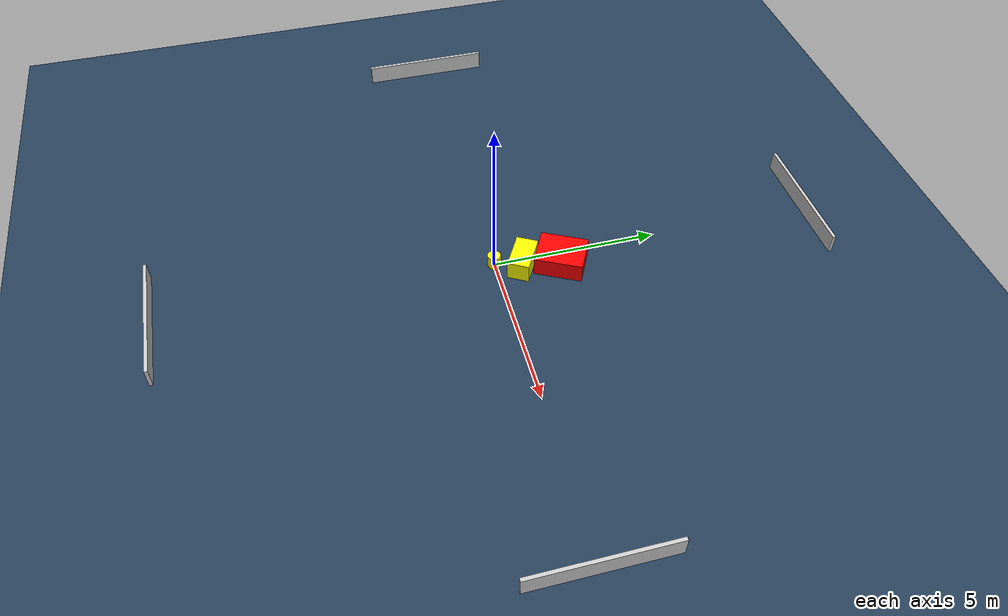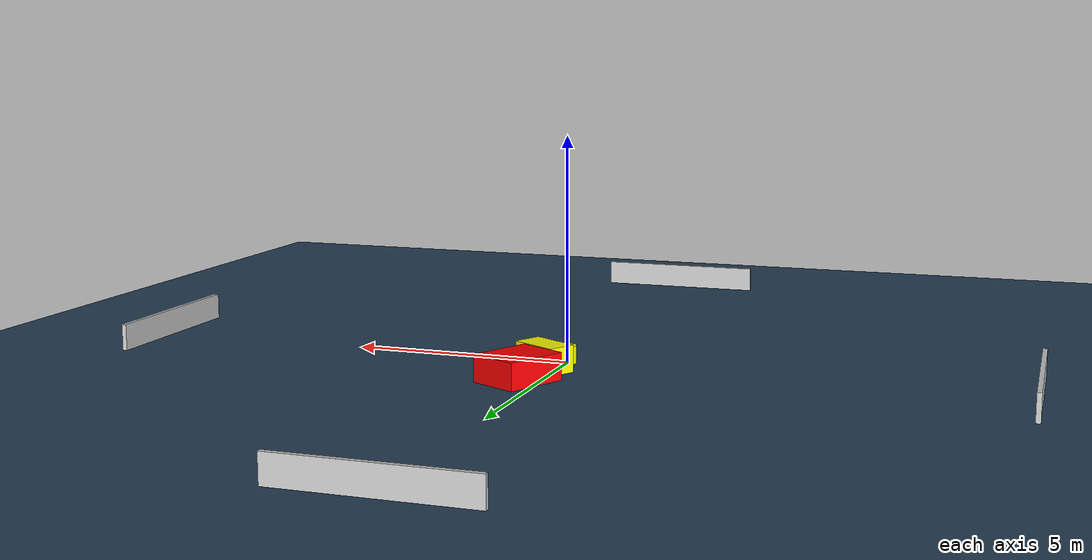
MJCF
<?xml version="1.0" ?>
<mujoco model="generated_environment">
  <option timestep="0.01" integrator="RK4" cone="elliptic"/>
  <default>
    <geom density="1"/>
  </default>
  <asset>
    <texture builtin="gradient" height="3072" name="skybox" rgb1="0.3 0.5 0.7" rgb2="0 0 0" type="skybox" width="512"/>
    <texture builtin="checker" height="300" name="groundplane" rgb1="0.2 0.3 0.4" rgb2="0.1 0.2 0.3" type="2d" width="300"/>
    <material name="groundplane" reflectance="0.2" texrepeat="5 5" texture="groundplane"/>
  </asset>
  <worldbody>
    <light dir="0 0 -1" directional="true" pos="0 0 1.5"/>
    <geom condim="3" friction="0.5 0.005 0.001" material="groundplane" name="floor" pos="0 0 0" size="0 0 0.05" type="plane"/>
    <body name="walls">
      <geom name="wall_1" condim="4" pos="-10.0 0.0 0.3" rgba="0.800000011920929 0.800000011920929 0.800000011920929 1.0" size="0.05 2.0 0.3" type="box"/>
      <geom name="wall_2" condim="4" pos="10.0 0.0 0.3" rgba="0.800000011920929 0.800000011920929 0.800000011920929 1.0" size="0.05 2.0 0.3" type="box"/>
      <geom name="wall_3" condim="4" pos="0.0 -10.0 0.3" rgba="0.800000011920929 0.800000011920929 0.800000011920929 1.0" size="2.0 0.05 0.3" type="box"/>
      <geom name="wall_4" condim="4" pos="0.0 10.0 0.3" rgba="0.800000011920929 0.800000011920929 0.800000011920929 1.0" size="2.0 0.05 0.3" type="box"/>
    </body>
    <body name="robot">
      <joint name="joint_x" type="slide" pos="0 0 0" axis="1 0 0"/>
      <joint name="joint_y" type="slide" pos="0 0 0" axis="0 1 0"/>
      <geom name="robot" type="cylinder" pos="0.0 0.0 0.2" size="0.2 0.2 0.0" mass="5.0" friction="1.0 0.005 0.0001" condim="4" rgba="1.0 1.0 0.0 1.0"/>
    </body>
    <body name="obstacle_1_movable">
      <geom name="obstacle_1_movable" condim="4" pos="0.26286466111094164 0.8056285089741592 0.3" euler="0 0 330.16537168300465" friction="0.0 0.005 0.001" rgba="1.0 1.0 0.0 1.0" size="0.5685630376462277 0.32715025278275195 0.3" type="box" mass="0.1"/>
      <joint type="free"/>
    </body>
    <body name="obstacle_2_static">
      <geom name="obstacle_2_static" condim="4" pos="0.4559644521926395 1.942084818400502 0.3" euler="0 0 62.799068980581225" friction="0.0 0.005 0.001" rgba="1.0 0.0 0.0 1.0" size="0.7189590845891038 0.5792424656440434 0.3" type="box"/>
    </body>
  </worldbody>
  <actuator>
    <motor name="actuator_x" joint="joint_x" gear="1" ctrlrange="-1 1"/>
    <motor name="actuator_y" joint="joint_y" gear="1" ctrlrange="-1 1"/>
  </actuator>
</mujoco>
